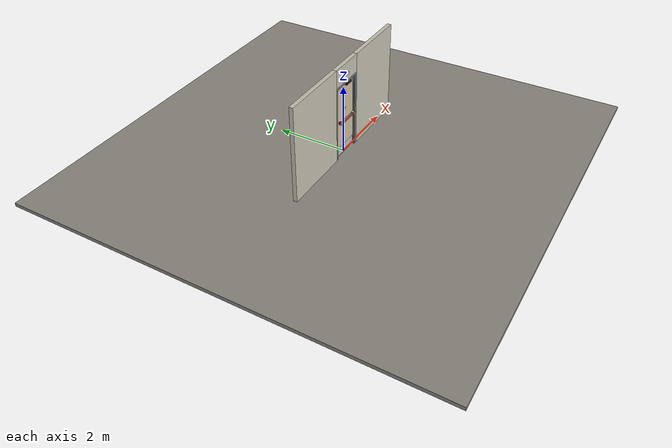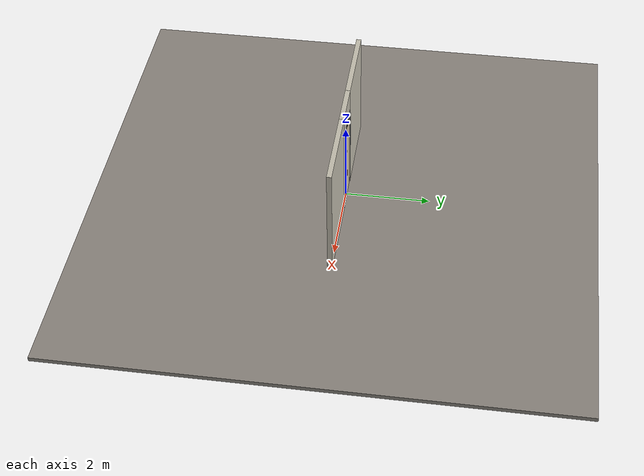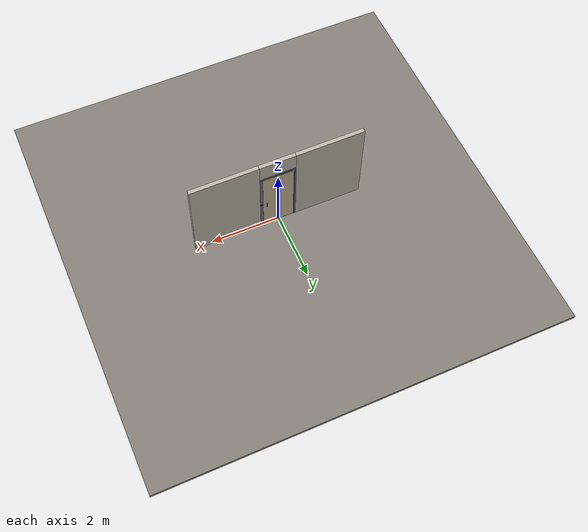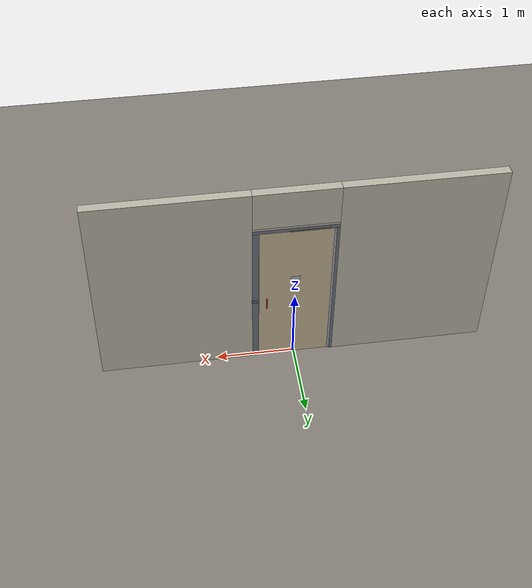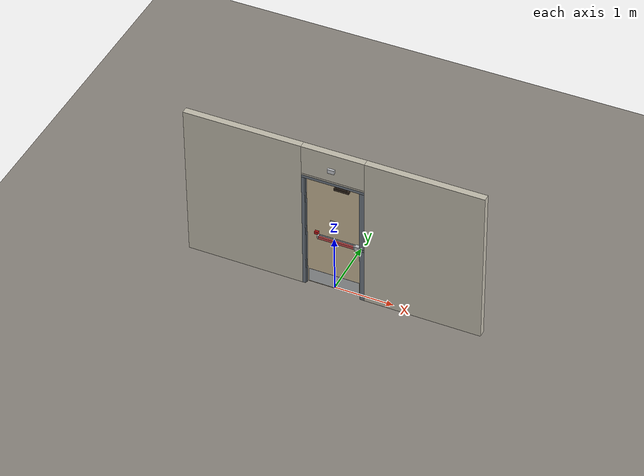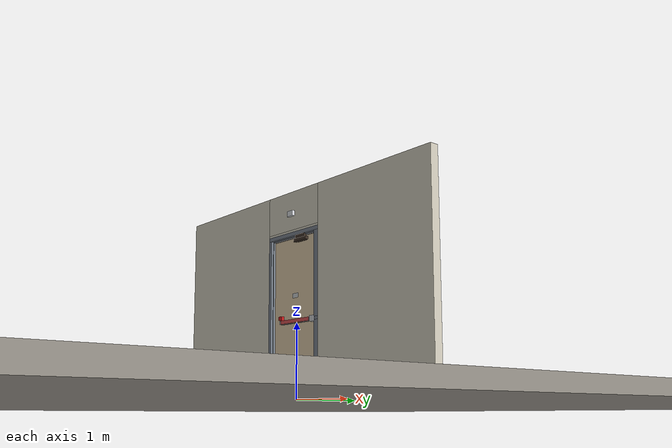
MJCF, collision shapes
<?xml version="1.0" ?>
<mujoco model="db0070_swing_single_full">
  <compiler angle="radian" meshdir="../../hardware" texturedir="../../textures" autolimits="true" inertiafromgeom="false"/>
  <option timestep="0.002" integrator="implicitfast" cone="elliptic" impratio="10" noslip_iterations="3">
    <flag multiccd="enable"/>
  </option>
  <size memory="16M"/>
  <default>
    <geom condim="4" solref="0.005 1" solimp="0.95 0.99 0.001"/>
    <joint solreflimit="0.005 1" solimplimit="0.95 0.99 0.001"/>
    <tendon solreflimit="0.005 1"/>
    <equality solref="0.002 1"/>
  </default>
  <visual>
    <headlight ambient="0.4 0.4 0.4" diffuse="0.7 0.7 0.7" specular="0.2 0.2 0.2"/>
    <quality shadowsize="4096"/>
    <map znear="0.01" zfar="60"/>
  </visual>
  <asset>
    <mesh name="exit_sign_a6449bfa2c" file="exit_sign_a6449bfa2c.obj"/>
    <mesh name="pull_1e5d69a91a" file="pull_1e5d69a91a.obj"/>
    <mesh name="touchbar_pad_2729a067b4" file="touchbar_pad_2729a067b4.obj"/>
    <material name="mat_floor" rgba="0.55 0.53 0.5 1" specular="0.2" shininess="0.15" reflectance="0"/>
    <material name="mat_wall" rgba="0.78 0.76 0.7 1" specular="0.2" shininess="0.1" reflectance="0"/>
    <material name="mat_leaf" rgba="0.82 0.75 0.62 1" specular="0.23" shininess="0.55" reflectance="0.02"/>
    <material name="mat_hinge" rgba="0.65 0.66 0.68 1" specular="0.74" shininess="0.5" reflectance="0.36"/>
    <material name="mat_op_stainless" rgba="0.75 0.76 0.77 1" specular="0.8" shininess="0.65" reflectance="0.4"/>
    <material name="mat_alarm" rgba="0.75 0.1 0.1 1" specular="0.2" shininess="0.5" reflectance="0"/>
    <material name="mat_bolt" rgba="0.75 0.76 0.77 1" specular="0.8" shininess="0.65" reflectance="0.4"/>
    <material name="mat_maglock" rgba="0.22 0.17 0.13 1" specular="0.8" shininess="0.6" reflectance="0.4"/>
    <material name="mat_frame" rgba="0.45 0.48 0.52 1" specular="0.32" shininess="0.6" reflectance="0.08"/>
    <material name="mat_seal" rgba="0.1 0.1 0.1 1" specular="0.2" shininess="0.1" reflectance="0"/>
    <material name="mat_closer" rgba="0.22 0.17 0.13 1" specular="0.8" shininess="0.6" reflectance="0.4"/>
    <material name="mat_kick" rgba="0.75 0.76 0.77 1" specular="0.8" shininess="0.65" reflectance="0.4"/>
    <material name="mat_exit_sign" rgba="0.85 0.1 0.1 1" specular="0.2" shininess="0.6" reflectance="0"/>
    <material name="mat_sign_bracket" rgba="0.8 0.81 0.83 1" specular="0.8" shininess="0.6" reflectance="0.4"/>
    <material name="mat_sign" rgba="0.75 0.76 0.77 1" specular="0.8" shininess="0.65" reflectance="0.4"/>
    <texture name="skybox" type="skybox" builtin="gradient" rgb1="0.6 0.7 0.85" rgb2="0.9 0.92 0.95" width="256" height="256"/>
  </asset>
  <worldbody>
    <light name="sun" pos="1.5 -2.5 4" dir="-0.3 0.5 -0.8" directional="true" diffuse="0.8 0.8 0.8" specular="0.3 0.3 0.3" castshadow="true"/>
    <light name="fill" pos="-1.5 2.5 3" dir="0.3 -0.5 -0.7" directional="true" diffuse="0.35 0.35 0.4" castshadow="false"/>
    <camera name="robot_view" pos="0 -2.666313 1.812087" xyaxes="1 0 0 0 0.26963 0.962964" fovy="52"/>
    <camera name="far_view" pos="0 2.609312 1.812087" xyaxes="-1 0 0 0 -0.26963 0.962964" fovy="52"/>
    <camera name="iso" pos="2.004737 -2.244263 2.234138" xyaxes="0.741536 0.670913 0 -0.242917 0.268487 0.932151" fovy="46"/>
    <camera name="detail_handle" pos="0.5465 -0.718 1.296" xyaxes="0.97561 0.219512 0 -0.070934 0.315262 0.94635" fovy="38"/>
    <geom name="floor" type="box" size="6 6 0.05" pos="0 0 -0.05" material="mat_floor" group="0" contype="1" conaffinity="1" friction="0.8 0.005 0.0001" density="2400"/>
    <geom name="wall_left" type="box" size="0.99475 0.0575 1.3735" pos="-1.50525 -0.0285 1.3735" material="mat_wall" group="0" contype="1" conaffinity="1" friction="0.6 0.005 0.0001" density="800"/>
    <geom name="wall_right" type="box" size="0.97975 0.0575 1.3735" pos="1.52025 -0.0285 1.3735" material="mat_wall" group="0" contype="1" conaffinity="1" friction="0.6 0.005 0.0001" density="800"/>
    <geom name="wall_header" type="box" size="0.5255 0.0575 0.26" pos="0.015 -0.0285 2.487" material="mat_wall" group="0" contype="1" conaffinity="1" friction="0.6 0.005 0.0001" density="800"/>
    <geom name="leaf_maglock_body" type="box" size="0.125 0.025 0.02" pos="0.1565 -0.057 2.082" material="mat_maglock" group="0" contype="1" conaffinity="1" friction="0.6 0.005 0.0001" density="2000"/>
    <geom name="leaf_maglock_bracket" type="box" size="0.09 0.025 0.0225" pos="0.1565 -0.057 2.1245" material="mat_maglock" group="1" contype="0" conaffinity="0" density="7850"/>
    <geom name="jamb_hinge" type="box" size="0.025 0.0575 1.0735" pos="-0.4855 -0.0285 1.0735" material="mat_frame" group="0" contype="1" conaffinity="1" friction="0.6 0.005 0.0001" density="300"/>
    <geom name="strike_1016_wall_n" type="box" size="0.04 0.0155 0.02" pos="0.5005 -0.0705 1.016" material="mat_frame" group="0" contype="1" conaffinity="1" friction="0.6 0.005 0.0001" density="300"/>
    <geom name="strike_1016_wall_p" type="box" size="0.04 0.008 0.02" pos="0.5005 -0.025 1.016" material="mat_frame" group="0" contype="1" conaffinity="1" friction="0.6 0.005 0.0001" density="300"/>
    <geom name="strike_1016_ramp" type="box" size="0.04 0.034482 0.02" pos="0.508781 0.0044 1.016" quat="0.989198 0 0 -0.146587" material="mat_frame" group="0" contype="1" conaffinity="1" friction="0.12 0.005 0.0001" density="300"/>
    <geom name="strike_1016_back" type="box" size="0.0285 0.011 0.02" pos="0.512 -0.044 1.016" material="mat_frame" group="0" contype="1" conaffinity="1" friction="0.6 0.005 0.0001" density="300"/>
    <geom name="jamb_strike_0" type="box" size="0.04 0.0575 0.498" pos="0.5005 -0.0285 0.498" material="mat_frame" group="0" contype="1" conaffinity="1" friction="0.6 0.005 0.0001" density="300"/>
    <geom name="jamb_strike_1" type="box" size="0.04 0.0575 0.5555" pos="0.5005 -0.0285 1.5915" material="mat_frame" group="0" contype="1" conaffinity="1" friction="0.6 0.005 0.0001" density="300"/>
    <geom name="jamb_head" type="box" size="0.5255 0.0575 0.025" pos="0.015 -0.0285 2.172" material="mat_frame" group="0" contype="1" conaffinity="1" friction="0.6 0.005 0.0001" density="300"/>
    <geom name="head_stud" type="box" size="0.5255 0.0575 0.015" pos="0.015 -0.0285 2.212" material="mat_wall" group="0" contype="1" conaffinity="1" friction="0.6 0.005 0.0001" density="500"/>
    <geom name="stop_hinge" type="box" size="0.0055 0.016 1.0735" pos="-0.455 -0.0385 1.0735" material="mat_frame" group="0" contype="1" conaffinity="1" friction="0.6 0.005 0.0001" density="300"/>
    <geom name="stop_strike" type="box" size="0.0055 0.016 0.48425" pos="0.455 -0.0385 0.48425" material="mat_frame" group="0" contype="1" conaffinity="1" friction="0.6 0.005 0.0001" density="300"/>
    <geom name="stop_strike_1" type="box" size="0.0055 0.016 0.54175" pos="0.455 -0.0385 1.60525" material="mat_frame" group="0" contype="1" conaffinity="1" friction="0.6 0.005 0.0001" density="300"/>
    <geom name="stop_head" type="box" size="0.4605 0.016 0.0055" pos="0 -0.0385 2.1415" material="mat_frame" group="0" contype="1" conaffinity="1" friction="0.6 0.005 0.0001" density="300"/>
    <geom name="seal_hinge" type="box" size="0.004 0.0025 1.0735" pos="-0.4575 -0.0245 1.0735" material="mat_seal" group="1" contype="0" conaffinity="0" density="1100"/>
    <geom name="seal_strike" type="box" size="0.004 0.0025 0.48425" pos="0.4575 -0.0245 0.48425" material="mat_seal" group="1" contype="0" conaffinity="0" density="1100"/>
    <geom name="seal_strike_1" type="box" size="0.004 0.0025 0.54175" pos="0.4575 -0.0245 1.60525" material="mat_seal" group="1" contype="0" conaffinity="0" density="1100"/>
    <geom name="seal_head" type="box" size="0.4405 0.0025 0.008" pos="0 -0.0245 2.135" material="mat_seal" group="1" contype="0" conaffinity="0" density="1100"/>
    <geom name="closer_concealed_slot" type="box" size="0.25 0.008 0.004" pos="-0.1605 0.032 2.152" material="mat_closer" group="1" contype="0" conaffinity="0" density="2700"/>
    <geom name="exit_sign" type="mesh" mesh="exit_sign_a6449bfa2c" pos="0 -0.15 2.447" material="mat_exit_sign" group="2" contype="0" conaffinity="0" density="500"/>
    <geom name="exit_sign_bracket" type="box" size="0.05775 0.02 0.035" pos="0 -0.1055 2.447" material="mat_sign_bracket" group="2" contype="0" conaffinity="0" density="7850"/>
    <site name="approach_point" pos="0 -1.5 0" quat="1 0 0 0" size="0.05" rgba="0.2 0.9 0.2 0.5" group="4"/>
    <site name="goal_point" pos="0 1.5 0" quat="1 0 0 0" size="0.05" rgba="0.2 0.9 0.2 0.5" group="4"/>
    <site name="door_plane_center" pos="0 0 1.0735" quat="1 0 0 0" size="0.02" rgba="0.2 0.9 0.2 0.5" group="4"/>
    <body name="leaf" pos="-0.4605 0 0">
      <inertial pos="0.446172 -0.001176 1.03992" mass="52.971684" quat="0.504146 0.496359 -0.502607 0.49684" diaginertia="4.166632623 20.417218815 24.546331353"/>
      <joint name="leaf_hinge" type="hinge" axis="0 0 1" pos="0.003 0.029 0" limited="true" range="0 1.570796" solreflimit="0.02 1" damping="10.268966" frictionloss="3.235804" stiffness="10.76524" springref="-2.140222" armature="0.02"/>
      <geom name="leaf_slab" type="box" size="0.457 0.022 1.067" pos="0.46 0 1.076" material="mat_leaf" group="0" contype="1" conaffinity="1" friction="0.4 0.005 0.0001" density="1"/>
      <geom name="hinge_continuous" type="cylinder" size="0.0136 1.057" pos="0.003 0.029 1.076" material="mat_hinge" group="1" contype="0" conaffinity="0" density="2700"/>
      <geom name="leaf_exit_device_rail" type="box" size="0.31705 0.006 0.025" pos="0.51995 -0.028 1.016" material="mat_op_stainless" group="0" contype="1" conaffinity="1" friction="0.6 0.005 0.0001" density="3000"/>
      <geom name="leaf_exit_device_rail_end_n" type="box" size="0.01 0.0325 0.025" pos="0.2129 -0.0545 1.016" material="mat_op_stainless" group="0" contype="1" conaffinity="1" friction="0.6 0.005 0.0001" density="3000"/>
      <geom name="leaf_exit_device_rail_end_p" type="box" size="0.01 0.0325 0.025" pos="0.827 -0.0545 1.016" material="mat_op_stainless" group="0" contype="1" conaffinity="1" friction="0.6 0.005 0.0001" density="3000"/>
      <geom name="leaf_exit_device_case" type="box" size="0.034 0.034125 0.0375" pos="0.871 -0.056125 1.016" material="mat_op_stainless" group="0" contype="1" conaffinity="1" friction="0.6 0.005 0.0001" density="3000"/>
      <geom name="leaf_exit_device_alarm" type="box" size="0.03 0.02 0.025" pos="0.1779 -0.042 1.076" material="mat_alarm" group="1" contype="0" conaffinity="0" density="1500"/>
      <geom name="leaf_far_pull_p" type="mesh" mesh="pull_1e5d69a91a" pos="0.827 0.022 1.016" quat="-0.707107 0.707107 0 0" material="mat_op_stainless" group="1" contype="0" conaffinity="0" density="3000"/>
      <geom name="leaf_far_pull_col_p" type="capsule" size="0.0095 0.08" pos="0.827 0.082 1.016" material="mat_op_stainless" group="3" contype="1" conaffinity="1" rgba="0.8 0.3 0.3 0.25" friction="0.7 0.01 0.0001" density="3000"/>
      <geom name="leaf_maglock_armature" type="box" size="0.09 0.005 0.02" pos="0.617 -0.027 2.082" material="mat_maglock" group="1" contype="0" conaffinity="0" density="7800"/>
      <geom name="kick_plate_n" type="box" size="0.427 0.0008 0.125" pos="0.46 -0.0228 0.144" material="mat_kick" group="2" contype="0" conaffinity="0" density="7900"/>
      <geom name="sign_push" type="box" size="0.06 0.001 0.03" pos="0.46 -0.023 1.359" material="mat_sign" group="2" contype="0" conaffinity="0" density="7900"/>
      <geom name="sign_pull" type="box" size="0.06 0.001 0.03" pos="0.46 0.023 1.359" material="mat_sign" group="2" contype="0" conaffinity="0" density="7900"/>
      <site name="leaf_far_pull_grip_p" pos="0.827 0.082 1.016" quat="1 0 0 0" size="0.012" rgba="0.2 0.9 0.2 0.5" group="4"/>
      <site name="leaf_edge_mid" pos="0.917 0 1.067" quat="1 0 0 0" size="0.02" rgba="0.2 0.9 0.2 0.5" group="4"/>
      <body name="leaf_exit_device" pos="0.51995 -0.022 1.016">
        <inertial pos="0 -0.05 0" mass="4.76361" quat="0 0 0.707107 0.707107" diaginertia="0.00116113 0.137653089 0.138099678"/>
        <joint name="leaf_exit_device_slide" type="slide" axis="0 1 0" limited="true" range="0 0.016" damping="153.575154" frictionloss="0.5" stiffness="1200" springref="-0.015" armature="0.15"/>
        <geom name="leaf_exit_device_pad" type="mesh" mesh="touchbar_pad_2729a067b4" pos="0 0 0" quat="0.707107 0.707107 0 0" material="mat_op_stainless" group="1" contype="0" conaffinity="0" density="3000"/>
        <geom name="leaf_exit_device_pad_col" type="box" size="0.29405 0.015 0.0225" pos="0 -0.05 0" material="mat_op_stainless" group="3" contype="1" conaffinity="1" rgba="0.8 0.3 0.3 0.25" friction="0.8 0.01 0.0001" density="3000"/>
        <site name="leaf_exit_device_push" pos="0 -0.065 0" quat="1 0 0 0" size="0.015" rgba="0.2 0.9 0.2 0.5" group="4"/>
      </body>
      <body name="leaf_latch_bolt" pos="0.917 -0.044 1.016">
        <inertial pos="-0.0055 0 0" mass="0.102826" quat="0.92388 -0.382683 0 0" diaginertia="0.000004365 0.000018287 0.000018287"/>
        <joint name="leaf_latch_bolt_slide" type="slide" axis="-1 0 0" limited="true" range="0 0.019" damping="2" frictionloss="0.3" stiffness="800" springref="-0.01" armature="0.1"/>
        <geom name="leaf_latch_bolt_capsule" type="capsule" size="0.0095 0.015" pos="-0.0055 0 0" quat="0.707107 0 0.707107 0" material="mat_bolt" group="0" contype="1" conaffinity="1" friction="0.2 0.005 0.0001" density="8500"/>
      </body>
    </body>
  </worldbody>
  <tendon>
    <fixed name="leaf_latch_bolt_coupling" limited="true" range="0 10">
      <joint joint="leaf_latch_bolt_slide" coef="1"/>
      <joint joint="leaf_exit_device_slide" coef="-1.357143"/>
    </fixed>
  </tendon>
  <equality>
    <weld name="leaf_maglock" body1="leaf" body2="world" active="true"/>
  </equality>
  <sensor>
    <jointpos name="leaf_hinge_pos" joint="leaf_hinge"/>
    <jointvel name="leaf_hinge_vel" joint="leaf_hinge"/>
    <jointpos name="leaf_exit_device_slide_pos" joint="leaf_exit_device_slide"/>
    <jointvel name="leaf_exit_device_slide_vel" joint="leaf_exit_device_slide"/>
    <jointpos name="leaf_latch_bolt_slide_pos" joint="leaf_latch_bolt_slide"/>
    <jointvel name="leaf_latch_bolt_slide_vel" joint="leaf_latch_bolt_slide"/>
  </sensor>
</mujoco>
